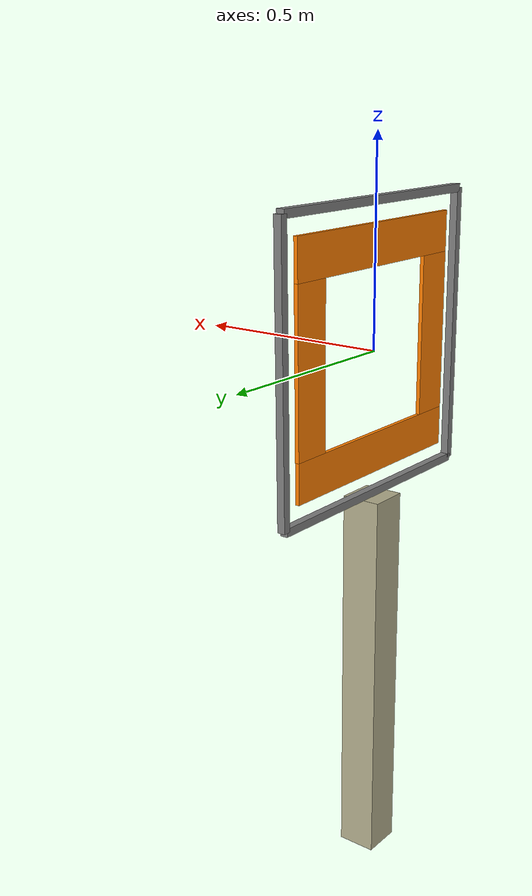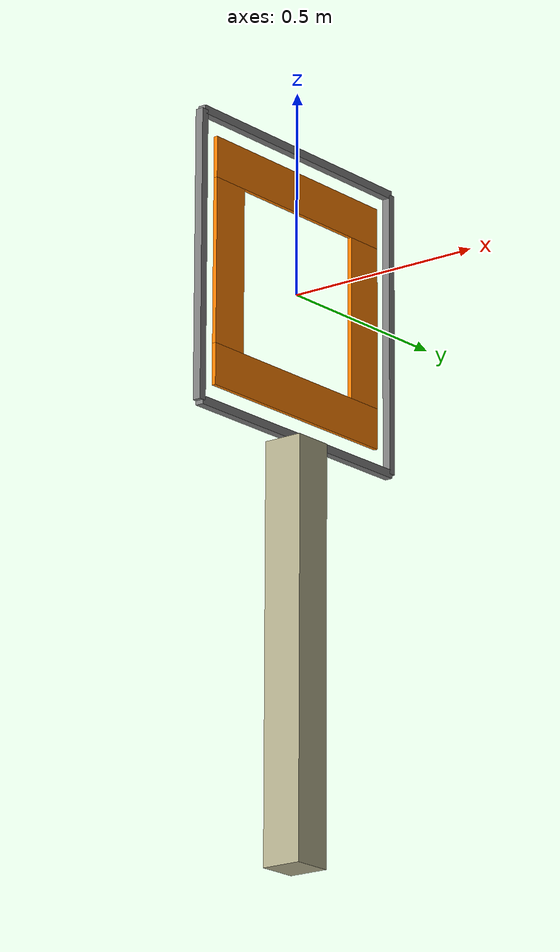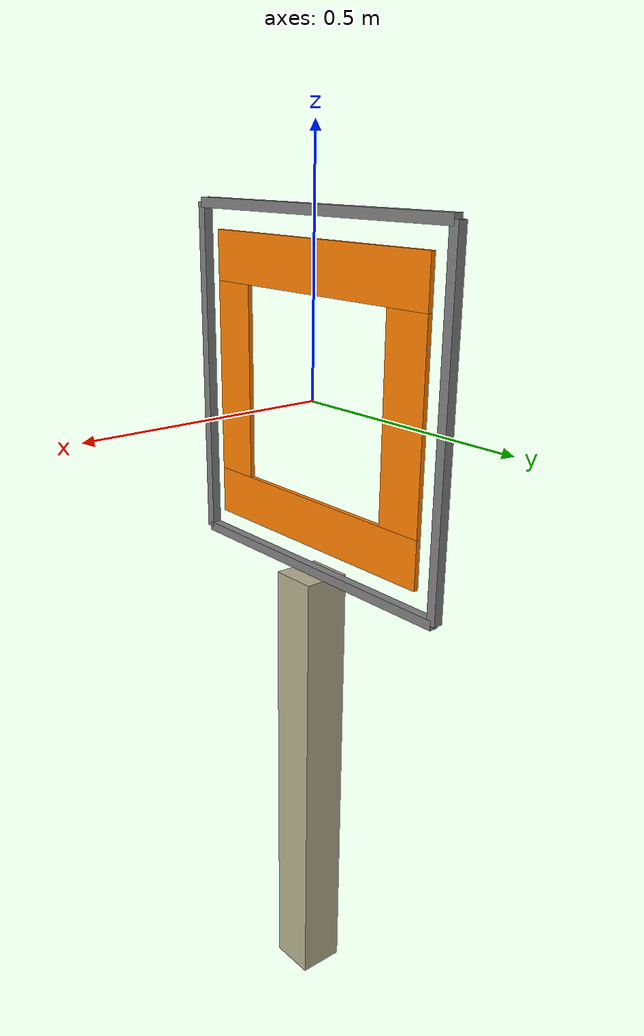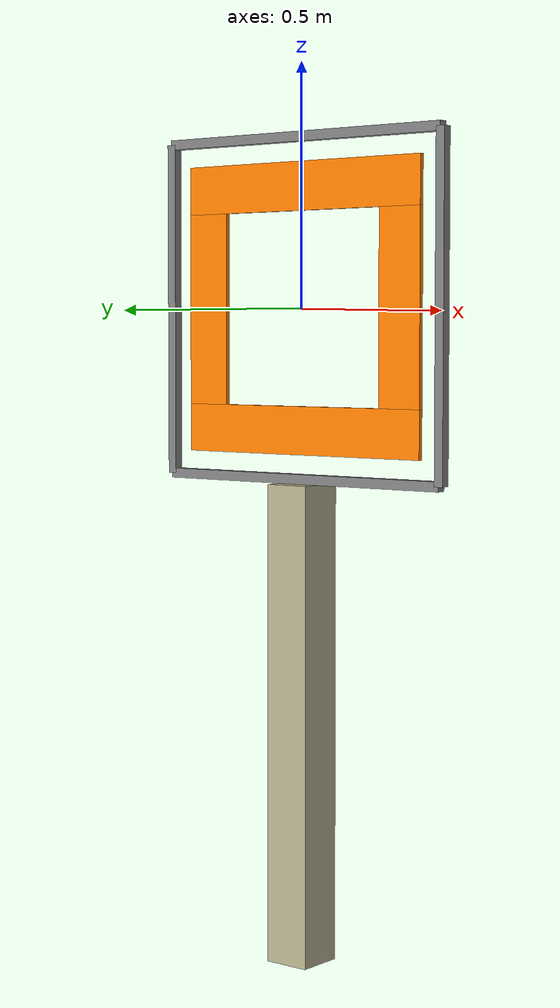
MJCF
<mujoco>
  <compiler angle="degree"/>

  <asset>
    <material name="gate_orange" rgba="1.0 0.5 0.0 1" specular="0.5" shininess="0.3" reflectance="0.2" emission="0.4"/>
    <material name="frame_mat" rgba="0.5 0.5 0.5 1" specular="0.4" shininess="0.4" reflectance="0.5"/>
    <material name="stand_mat" rgba="0.7 0.68 0.55 1" specular="0.0" shininess="0.0" reflectance="0.0"/>
  </asset>

  <worldbody>
    <body name="gate">
      <geom name="gate_top" type="box" size="0.005 0.3 0.05" pos="0 0 0.25" material="gate_orange"/>
      <geom name="gate_bottom" type="box" size="0.005 0.3 0.05" pos="0 0 -0.25" material="gate_orange"/>
      <geom name="gate_left" type="box" size="0.005 0.05 0.2" pos="0 -0.25 0" material="gate_orange"/>
      <geom name="gate_right" type="box" size="0.005 0.05 0.2" pos="0 0.25 0" material="gate_orange"/>

      <geom name="frame_top" type="box" size="0.01 0.35 0.01" pos="0 0 0.35" material="frame_mat"/>
      <geom name="frame_bottom" type="box" size="0.01 0.35 0.01" pos="0 0 -0.35" material="frame_mat"/>
      <geom name="frame_left" type="box" size="0.01 0.01 0.35" pos="0 -0.35 0" material="frame_mat"/>
      <geom name="frame_right" type="box" size="0.01 0.01 0.35" pos="0 0.35 0" material="frame_mat"/>

      <geom name="gate_stand" type="box" size="0.05 0.05 0.5" pos="0 0 -0.86" material="stand_mat"/>
    </body>
  </worldbody>
</mujoco>
